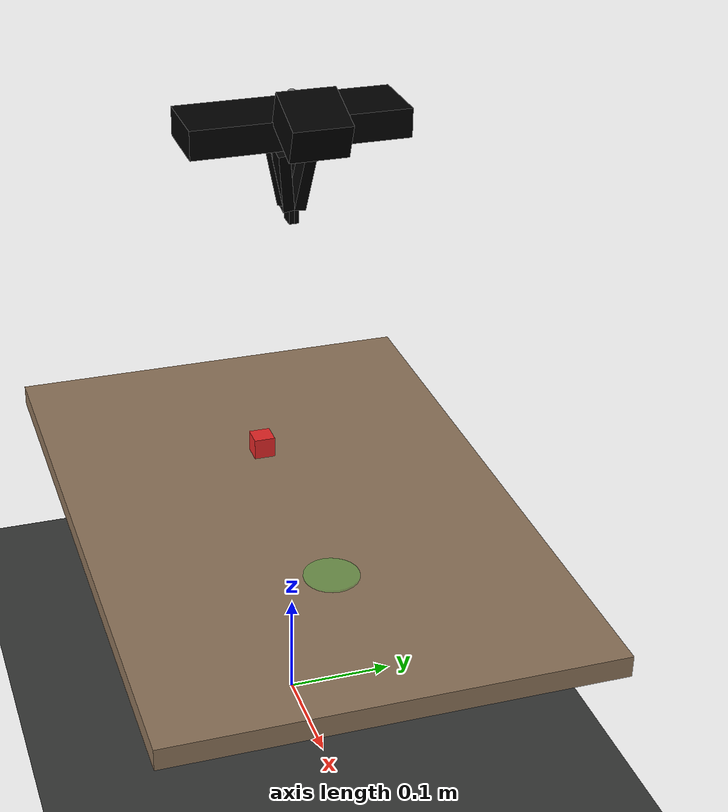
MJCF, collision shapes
<?xml version="1.0" encoding="utf-8"?>
<mujoco model="trossen_gripper_pickplace">
  <compiler angle="radian" meshdir="meshes" autolimits="true"/>

  <option gravity="0 0 -9.81" timestep="0.001" cone="elliptic" impratio="10"/>

  <default>
    <joint damping="0.5" armature="0.001"/>
    <geom contype="1" conaffinity="1" friction="1.5 0.005 0.0001" solref="0.008 1" solimp="0.95 0.99 0.001"/>
  </default>

  <asset>
    <mesh name="link_6" file="link_6.stl"/>
    <mesh name="carriage_right" file="carriage_right.stl"/>
    <mesh name="carriage_left" file="carriage_left.stl"/>
    <mesh name="gripper_right" file="gripper_right.stl"/>
    <mesh name="gripper_left" file="gripper_left.stl"/>
    <mesh name="camera_mount_d405" file="camera_mount_d405.stl"/>

    <texture type="skybox" builtin="gradient" rgb1="0.4 0.6 0.8" rgb2="0.05 0.05 0.1" width="512" height="3072"/>
    <texture type="2d" name="groundplane" builtin="checker" mark="edge" rgb1="0.25 0.26 0.25" rgb2="0.18 0.18 0.18" markrgb="0.5 0.5 0.5" width="300" height="300"/>
    <material name="groundplane" texture="groundplane" texuniform="true" texrepeat="8 8" reflectance="0.1"/>
    <material name="cube_mat" rgba="0.9 0.15 0.15 1" specular="0.5" shininess="0.3"/>
    <material name="target_mat" rgba="0.2 0.9 0.2 0.3" specular="0.1"/>
    <material name="trossen_black" rgba="0.1 0.1 0.1 1" specular="0.2" shininess="0.3"/>
    <material name="gantry_mat" rgba="0.4 0.4 0.45 1" specular="0.2"/>
  </asset>

  <worldbody>
    <!-- Ground and table: bit 2 only (collide with cube and gripper base, NOT gripper pads) -->
    <geom name="floor" type="plane" size="1 1 0.01" material="groundplane"
          contype="2" conaffinity="2"/>
    <body name="table" pos="0 0 0.2">
      <geom name="table_top" type="box" size="0.3 0.2 0.01" rgba="0.55 0.45 0.35 1" mass="50"
            contype="2" conaffinity="2"/>
    </body>

    <!-- Lighting -->
    <light pos="0 0 1.5" dir="0 0 -1" diffuse="0.9 0.9 0.9" specular="0.3 0.3 0.3"/>
    <light pos="0.5 -0.4 1.0" dir="-0.4 0.3 -1" diffuse="0.3 0.3 0.3"/>

    <!-- Fixed scene cameras -->
    <camera name="overhead" pos="0 0 0.8" euler="0 0 0" fovy="60" resolution="640 480"/>
    <camera name="front" pos="0.4 -0.2 0.4" xyaxes="0.4 1 0 -0.2 0 1" fovy="50" resolution="640 480"/>

    <!-- Target placement zone (visual only) -->
    <body name="target_zone" pos="0.12 0 0.211">
      <geom name="target" type="cylinder" size="0.025 0.001" material="target_mat" contype="0" conaffinity="0"/>
    </body>

    <!-- 2cm cube: collides with table AND gripper pads -->
    <body name="cube" pos="-0.10 0 0.22">
      <joint name="cube_free" type="free"/>
      <inertial pos="0 0 0" mass="0.03" diaginertia="2e-7 2e-7 2e-7"/>
      <geom name="cube_geom" type="box" size="0.01 0.01 0.01" material="cube_mat"
            friction="5.0 0.05 0.01" solref="0.008 1"
            contype="3" conaffinity="3"/>
    </body>

    <!-- 3-DOF Cartesian Gantry -->
    <body name="gantry_x" pos="0 0 0.75">
      <joint name="slide_x" type="slide" axis="1 0 0" range="-0.25 0.25" damping="50" armature="0.05"/>
      <inertial pos="0 0 0" mass="0.5" diaginertia="1e-4 1e-4 1e-4"/>

      <body name="gantry_y">
        <joint name="slide_y" type="slide" axis="0 1 0" range="-0.15 0.15" damping="50" armature="0.05"/>
        <inertial pos="0 0 0" mass="0.3" diaginertia="1e-4 1e-4 1e-4"/>

        <body name="gantry_z">
          <joint name="slide_z" type="slide" axis="0 0 1" range="-0.4 0" damping="50" armature="0.05"/>
          <inertial pos="0 0 0" mass="0.3" diaginertia="1e-4 1e-4 1e-4"/>

          <body name="gripper_base" pos="0 0 -0.1" euler="0 1.5708 0">
            <inertial pos="0.0457277 -7.26e-06 1.402e-05" mass="0.554693"
                      diaginertia="0.001086 0.000824291 0.000487589"/>

            <!-- IMU sensor site -->
            <site name="imu_site" pos="0.0457 0 0" size="0.005"/>

            <!-- link_6 visual (no collision on mesh — it extends too far) -->
            <geom name="link_6_vis" type="mesh" mesh="link_6" material="trossen_black"
                  contype="0" conaffinity="0"/>
            <!-- link_6 collision box (bit 2: collides with table/floor only) -->
            <geom name="link_6_col" type="box" size="0.0125 0.094 0.031" pos="0.0685 0 0"
                  contype="2" conaffinity="2" rgba="0 0 0 0" group="3"/>

            <!-- Camera mount (visual only, no collision) -->
            <geom name="camera_mount_vis" type="mesh" mesh="camera_mount_d405" pos="0.012 0 0"
                  material="trossen_black" contype="0" conaffinity="0"/>
            <geom name="camera_mount_col" type="box" size="0.0155 0.025 0.025"
                  pos="0.0513206 0 0.0569399" quat="0.984808 0 0.173648 0"
                  contype="2" conaffinity="2" rgba="0 0 0 0" group="3"/>

            <!-- ===== CAMERAS ===== -->
            <camera name="realsense_d405" pos="0.05864 0.009 0.05427"
                    quat="0.5793 0.4056 -0.4056 -0.5793" mode="fixed"
                    fovy="87" resolution="640 480"/>

            <!-- Stereo cameras approximated from D405 mount position -->
            <camera name="color_left" pos="0.05864 0.015 0.05427"
                    quat="0.5793 0.4056 -0.4056 -0.5793" mode="fixed"
                    fovy="87" resolution="640 480"/>
            <camera name="color_right" pos="0.05864 -0.006 0.05427"
                    quat="0.5793 0.4056 -0.4056 -0.5793" mode="fixed"
                    fovy="87" resolution="640 480"/>

            <!-- Right carriage + gripper jaw -->
            <body name="carriage_right" pos="0.0865 -0.023 0">
              <inertial pos="0.00169015 0.00592793 0.00201817"
                        quat="-0.370973 0.740886 -0.0847721 0.553427" mass="0.081271"
                        diaginertia="4.29565e-05 3.87081e-05 2.21528e-05"/>
              <joint name="right_carriage_joint" type="slide" axis="0 -1 0" range="0 0.044"
                     armature="0.1" frictionloss="0.1"/>
              <geom name="carriage_right_vis" type="mesh" mesh="carriage_right" material="trossen_black"
                    contype="0" conaffinity="0"/>
              <geom name="gripper_right_vis" type="mesh" mesh="gripper_right" material="trossen_black"
                    contype="0" conaffinity="0"/>
              <!-- Collision: upper pad, lower pad, tip -->
              <geom name="gripper_right_pad_upper" type="box" size="0.0275 0.005 0.01"
                    pos="0.0286 0.01436 0.0037" quat="0.99257 -0.00451 0.10246 0.06547"
                    contype="1" conaffinity="1" rgba="0 0 0 0" group="3"/>
              <geom name="gripper_right_pad_lower" type="box" size="0.0275 0.005 0.01"
                    pos="0.0285 0.01429 -0.00973" quat="0.98344 0.0133 -0.16893 0.06427"
                    contype="1" conaffinity="1" rgba="0 0 0 0" group="3"/>
              <geom name="gripper_right_tip" type="box" size="0.00732 0.00214 0.00767"
                    pos="0.0622 0.02083 -0.00105"
                    contype="1" conaffinity="1" rgba="0 0 0 0" group="3"/>
            </body>

            <!-- Left carriage + gripper jaw -->
            <body name="carriage_left" pos="0.0865 0.023 0">
              <inertial pos="0.00169017 -0.00592796 -0.00365701"
                        quat="-0.0382691 0.628022 -0.255101 0.734198" mass="0.081271"
                        diaginertia="4.21112e-05 3.61943e-05 2.40003e-05"/>
              <joint name="left_carriage_joint" type="slide" axis="0 1 0" range="0 0.044"
                     armature="0.1" frictionloss="0.1"/>
              <geom name="carriage_left_vis" type="mesh" mesh="carriage_left" material="trossen_black"
                    contype="0" conaffinity="0"/>
              <geom name="gripper_left_vis" type="mesh" mesh="gripper_left" material="trossen_black"
                    contype="0" conaffinity="0"/>
              <!-- Collision: upper pad, lower pad, tip -->
              <geom name="gripper_left_pad_upper" type="box" size="0.0275 0.005 0.01"
                    pos="0.0286 -0.01436 0.0037" quat="0.99257 0.00451 0.10246 -0.06547"
                    contype="1" conaffinity="1" rgba="0 0 0 0" group="3"/>
              <geom name="gripper_left_pad_lower" type="box" size="0.0275 0.005 0.01"
                    pos="0.0285 -0.01429 -0.00973" quat="0.98344 -0.0133 -0.16893 -0.06427"
                    contype="1" conaffinity="1" rgba="0 0 0 0" group="3"/>
              <geom name="gripper_left_tip" type="box" size="0.00732 0.00214 0.00767"
                    pos="0.0622 -0.02083 -0.00105"
                    contype="1" conaffinity="1" rgba="0 0 0 0" group="3"/>
            </body>
          </body>
        </body>
      </body>
    </body>
  </worldbody>

  <!-- Symmetric coupling: both carriages move together -->
  <equality>
    <joint joint1="right_carriage_joint" joint2="left_carriage_joint" polycoef="0 1 0 0 0"/>
  </equality>

  <!-- Actuators -->
  <actuator>
    <position name="x_pos" joint="slide_x" kp="5000" ctrllimited="true" ctrlrange="-0.25 0.25"
              forcelimited="true" forcerange="-50 50"/>
    <position name="y_pos" joint="slide_y" kp="5000" ctrllimited="true" ctrlrange="-0.15 0.15"
              forcelimited="true" forcerange="-50 50"/>
    <position name="z_pos" joint="slide_z" kp="5000" ctrllimited="true" ctrlrange="-0.4 0"
              forcelimited="true" forcerange="-50 50"/>
    <position name="gripper_pos" joint="left_carriage_joint" kp="100" kv="10"
              ctrllimited="true" ctrlrange="0 0.044"
              forcelimited="true" forcerange="-400 400"/>
  </actuator>

  <!-- Sensors -->
  <sensor>
    <!-- Joint position sensors -->
    <jointpos name="x_sensor" joint="slide_x"/>
    <jointpos name="y_sensor" joint="slide_y"/>
    <jointpos name="z_sensor" joint="slide_z"/>
    <jointpos name="gripper_sensor" joint="left_carriage_joint"/>

    <!-- Joint velocity sensors -->
    <jointvel name="x_vel_sensor" joint="slide_x"/>
    <jointvel name="y_vel_sensor" joint="slide_y"/>
    <jointvel name="z_vel_sensor" joint="slide_z"/>
    <jointvel name="gripper_vel_sensor" joint="left_carriage_joint"/>

    <!-- Actuator force sensors -->
    <actuatorfrc name="x_force_sensor" actuator="x_pos"/>
    <actuatorfrc name="y_force_sensor" actuator="y_pos"/>
    <actuatorfrc name="z_force_sensor" actuator="z_pos"/>
    <actuatorfrc name="gripper_force_sensor" actuator="gripper_pos"/>

    <!-- IMU on gripper base -->
    <accelerometer name="imu_accel" site="imu_site" noise="0.01"/>
    <gyro name="imu_gyro" site="imu_site" noise="0.001"/>
    <framequat name="imu_orientation" objtype="site" objname="imu_site"/>

    <!-- Object tracking -->
    <framepos name="cube_pos" objtype="body" objname="cube"/>
  </sensor>
</mujoco>
